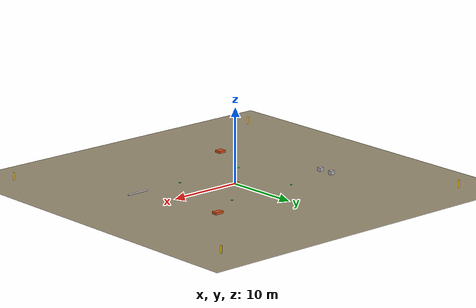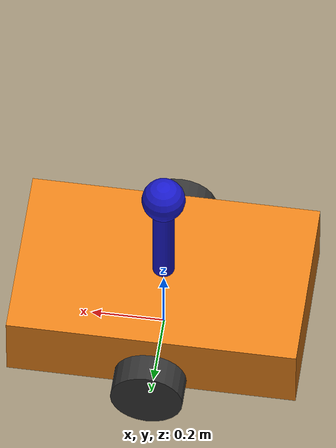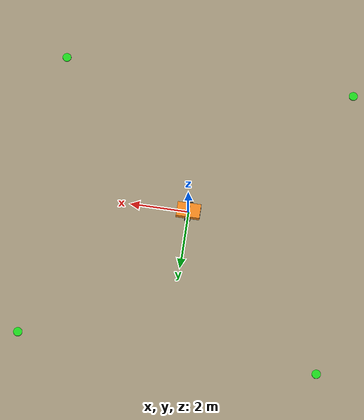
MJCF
<mujoco model="construction_site">
  <compiler angle="radian" coordinate="local"/>

  <option timestep="0.002" gravity="0 0 -9.81" integrator="implicit"/>

  <default>
    <joint armature="0.01" damping="0.1"/>
    <geom condim="3" friction="1.0 0.005 0.0001"/>
    <motor ctrllimited="true" ctrlrange="-10 10"/>
  </default>

  <asset>
    <texture type="skybox" builtin="gradient" rgb1="0.6 0.7 0.9" rgb2="0.2 0.3 0.5" width="512" height="512"/>
    <texture name="groundtex" type="2d" builtin="flat" rgb1="0.6 0.55 0.45" rgb2="0.65 0.6 0.5" width="512" height="512"/>
    <texture name="concrete" type="2d" builtin="flat" rgb1="0.7 0.7 0.7" rgb2="0.75 0.75 0.75" width="256" height="256"/>
    <material name="groundmat" texture="groundtex" texrepeat="20 20"/>
    <material name="concrete_mat" texture="concrete"/>
    <material name="chassis_mat" rgba="0.9 0.5 0.1 1"/>
    <material name="wheel_mat" rgba="0.2 0.2 0.2 1"/>
    <material name="sensor_mat" rgba="0.1 0.1 0.8 1"/>
    <material name="obstacle_mat" rgba="0.8 0.3 0.1 1"/>
    <material name="marker_mat" rgba="0.1 0.8 0.1 1"/>
    <material name="boundary_mat" rgba="1.0 0.8 0.0 1"/>
  </asset>

  <worldbody>
    <!-- Ground plane - construction site floor -->
    <geom name="ground" type="plane" size="25 25 0.1" material="groundmat"/>
    <light name="sun" pos="0 0 15" dir="0 0 -1" diffuse="1 1 1" castshadow="true"/>
    <light name="ambient" pos="0 0 10" diffuse="0.3 0.3 0.3" specular="0 0 0"/>

    <!-- Site boundary markers (yellow posts) -->
    <body name="boundary_nw" pos="-20 20 0.5">
      <geom type="cylinder" size="0.1 0.5" material="boundary_mat"/>
    </body>
    <body name="boundary_ne" pos="20 20 0.5">
      <geom type="cylinder" size="0.1 0.5" material="boundary_mat"/>
    </body>
    <body name="boundary_sw" pos="-20 -20 0.5">
      <geom type="cylinder" size="0.1 0.5" material="boundary_mat"/>
    </body>
    <body name="boundary_se" pos="20 -20 0.5">
      <geom type="cylinder" size="0.1 0.5" material="boundary_mat"/>
    </body>

    <!-- Work area markers (green - survey points) -->
    <body name="marker_1" pos="-5 5 0.02">
      <geom type="cylinder" size="0.15 0.02" material="marker_mat"/>
    </body>
    <body name="marker_2" pos="5 5 0.02">
      <geom type="cylinder" size="0.15 0.02" material="marker_mat"/>
    </body>
    <body name="marker_3" pos="5 -5 0.02">
      <geom type="cylinder" size="0.15 0.02" material="marker_mat"/>
    </body>
    <body name="marker_4" pos="-5 -5 0.02">
      <geom type="cylinder" size="0.15 0.02" material="marker_mat"/>
    </body>

    <!-- Obstacles - construction materials -->
    <body name="pallet_1" pos="10 8 0.15">
      <geom type="box" size="0.6 0.4 0.15" material="obstacle_mat"/>
    </body>
    <body name="pallet_2" pos="-8 -12 0.15">
      <geom type="box" size="0.5 0.5 0.15" material="obstacle_mat"/>
    </body>
    <body name="pipes" pos="12 -5 0.1">
      <geom type="cylinder" size="0.1 1.5" euler="0 1.5708 0" material="concrete_mat"/>
    </body>

    <!-- Concrete blocks -->
    <body name="block_1" pos="-12 3 0.25">
      <geom type="box" size="0.3 0.3 0.25" material="concrete_mat"/>
    </body>
    <body name="block_2" pos="-12 5 0.25">
      <geom type="box" size="0.3 0.3 0.25" material="concrete_mat"/>
    </body>

    <!-- SiteBot: Differential Drive Robot -->
    <body name="chassis" pos="0 0 0.15">
      <freejoint name="root"/>
      <inertial pos="0 0 0" mass="50" diaginertia="2 2 1"/>

      <!-- Main chassis body -->
      <geom name="chassis_box" type="box" size="0.4 0.25 0.1" material="chassis_mat"/>

      <!-- Sensor mast (simulating GPS/total station receiver) -->
      <geom name="mast" type="cylinder" pos="0 0 0.25" size="0.03 0.15" material="sensor_mat"/>
      <geom name="sensor_head" type="sphere" pos="0 0 0.42" size="0.06" material="sensor_mat"/>

      <!-- Left wheel -->
      <body name="left_wheel" pos="0 0.3 -0.05">
        <joint name="left_wheel_joint" type="hinge" axis="0 1 0" limited="false"/>
        <inertial pos="0 0 0" mass="2" diaginertia="0.02 0.04 0.02"/>
        <geom name="left_wheel_geom" type="cylinder" size="0.1 0.04" euler="1.5708 0 0" material="wheel_mat"/>
      </body>

      <!-- Right wheel -->
      <body name="right_wheel" pos="0 -0.3 -0.05">
        <joint name="right_wheel_joint" type="hinge" axis="0 1 0" limited="false"/>
        <inertial pos="0 0 0" mass="2" diaginertia="0.02 0.04 0.02"/>
        <geom name="right_wheel_geom" type="cylinder" size="0.1 0.04" euler="1.5708 0 0" material="wheel_mat"/>
      </body>

      <!-- Front caster -->
      <body name="front_caster" pos="0.35 0 -0.05">
        <inertial pos="0 0 0" mass="0.5" diaginertia="0.001 0.001 0.001"/>
        <geom name="front_caster_geom" type="sphere" size="0.05" friction="0.1 0.001 0.0001"/>
      </body>

      <!-- Rear caster -->
      <body name="rear_caster" pos="-0.35 0 -0.05">
        <inertial pos="0 0 0" mass="0.5" diaginertia="0.001 0.001 0.001"/>
        <geom name="rear_caster_geom" type="sphere" size="0.05" friction="0.1 0.001 0.0001"/>
      </body>
    </body>
  </worldbody>

  <actuator>
    <motor name="left_motor" joint="left_wheel_joint" gear="1" ctrllimited="true" ctrlrange="-10 10"/>
    <motor name="right_motor" joint="right_wheel_joint" gear="1" ctrllimited="true" ctrlrange="-10 10"/>
  </actuator>

  <sensor>
    <framepos name="chassis_pos" objtype="body" objname="chassis"/>
    <framequat name="chassis_quat" objtype="body" objname="chassis"/>
    <framelinvel name="chassis_vel" objtype="body" objname="chassis"/>
    <frameangvel name="chassis_angvel" objtype="body" objname="chassis"/>
    <jointvel name="left_wheel_vel" joint="left_wheel_joint"/>
    <jointvel name="right_wheel_vel" joint="right_wheel_joint"/>
  </sensor>
</mujoco>
